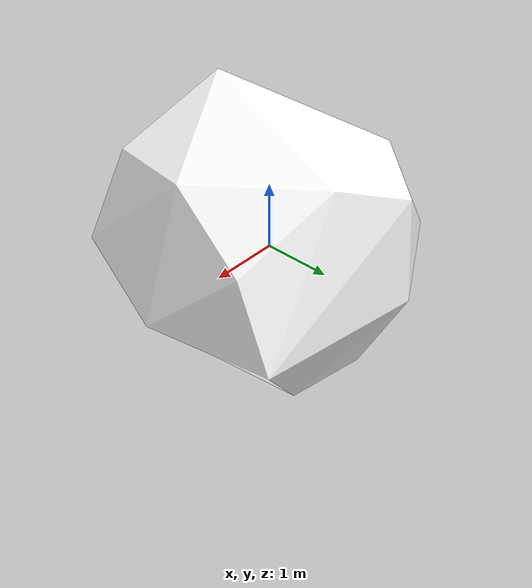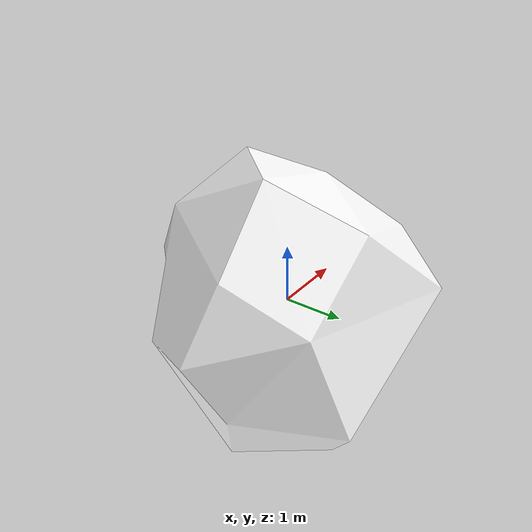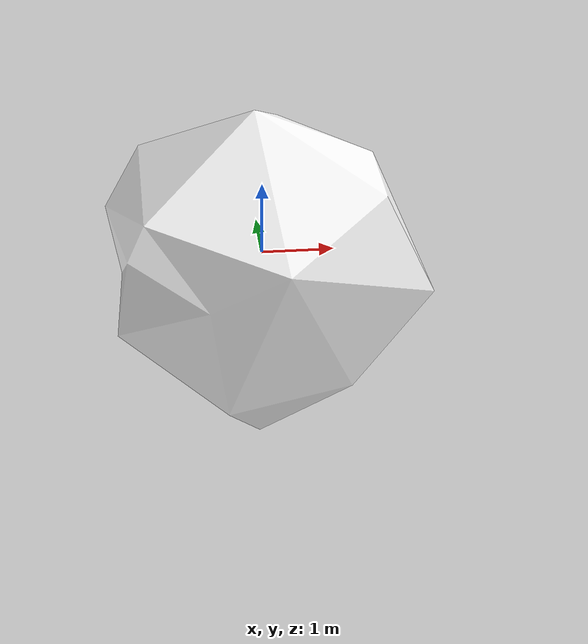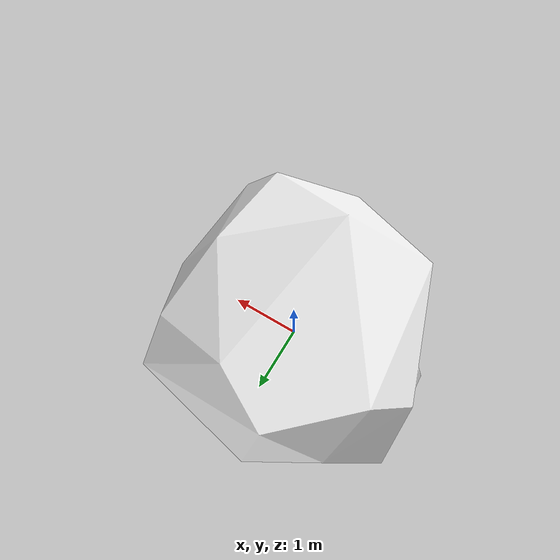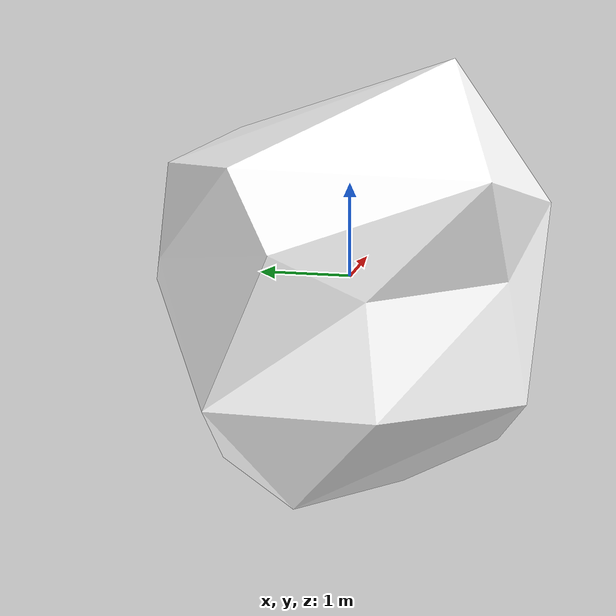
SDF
<?xml version="1.0" ?>
<sdf version="1.6">
    <model name="falling_rock6">
        <link name="base_link">
            <inertial>
                <pose>-0.007531 -0.006988 -0.003053 0 0 0</pose>
                <mass>1.094</mass>
                <inertia>
                    <ixx>0.0011747051758</ixx>
                    <ixy>5.173763420000001e-05</ixy>
                    <ixz>-5.2135730000000005e-05</ixz>
                    <iyy>0.0011684989258</iyy>
                    <iyz>4.838876340000001e-05</iyz>
                    <izz>0.0011260152344000002</izz>
                </inertia>
            </inertial>
            <collision name="collision">
                <geometry>
                    <mesh>
                        <scale>40 40 40</scale>
            <uri>meshes/FallingRock06_Collider.dae</uri>
                    </mesh>
                </geometry>
            </collision>
            <visual name="visual">
                <geometry>
                    <mesh>
                        <scale>40 40 40</scale>
            <uri>meshes/FallingRock06.dae</uri>
                    </mesh>
                </geometry>
                <material>
                    <diffuse>1.0 1.0 1.0</diffuse>
                    <specular>1.0 1.0 1.0</specular>
                    <pbr>
                        <metal>
                            <albedo_map>https://fuel.gazebosim.org/1.0/openrobotics/models/falling rock 6/5/files/materials/textures/FallingRocks_Albedo.jpg</albedo_map>
                            <normal_map>https://fuel.gazebosim.org/1.0/openrobotics/models/falling rock 6/5/files/materials/textures/FallingRocks_Normal.jpg</normal_map>
                            <roughness_map>https://fuel.gazebosim.org/1.0/openrobotics/models/falling rock 6/5/files/materials/textures/FallingRocks_Roughness.jpg</roughness_map>
                        </metal>
                    </pbr>
                    <!-- fallback to script if no PBR support-->
                    <script>
                        <uri>https://fuel.gazebosim.org/1.0/openrobotics/models/falling rock 6/5/files/materials/scripts</uri>
                        <uri>https://fuel.gazebosim.org/1.0/openrobotics/models/falling rock 6/5/files/materials/textures</uri>
                        <name>FallingRocks/FallingRocks_Diffuse</name>
                    </script>
                </material>
            </visual>
        </link>
    </model>
</sdf>
